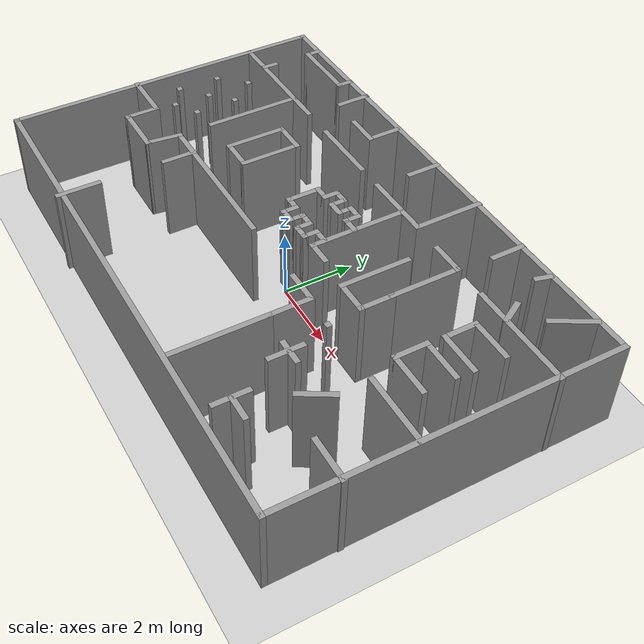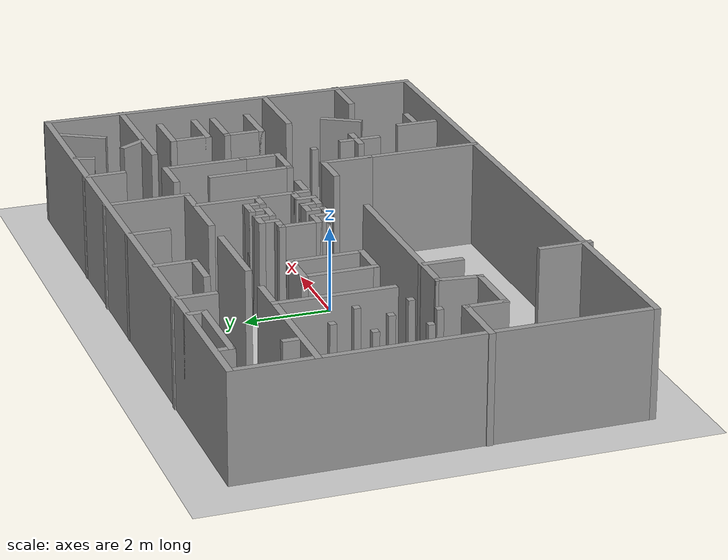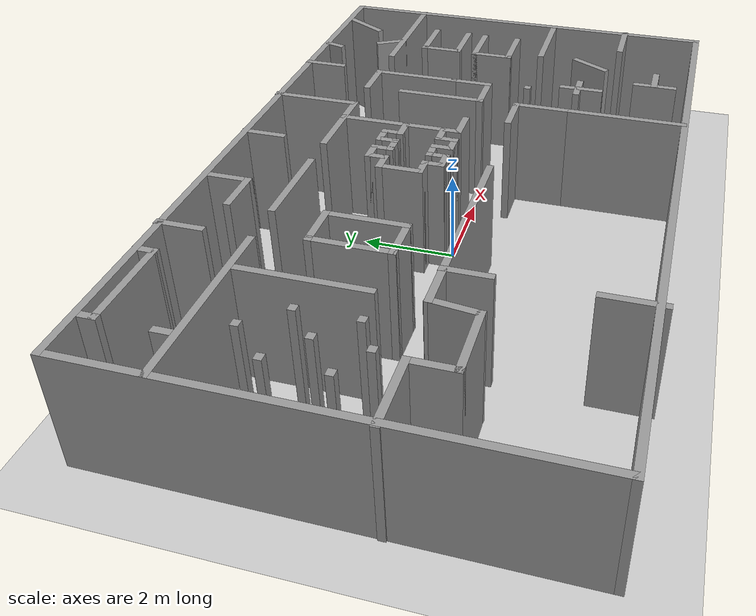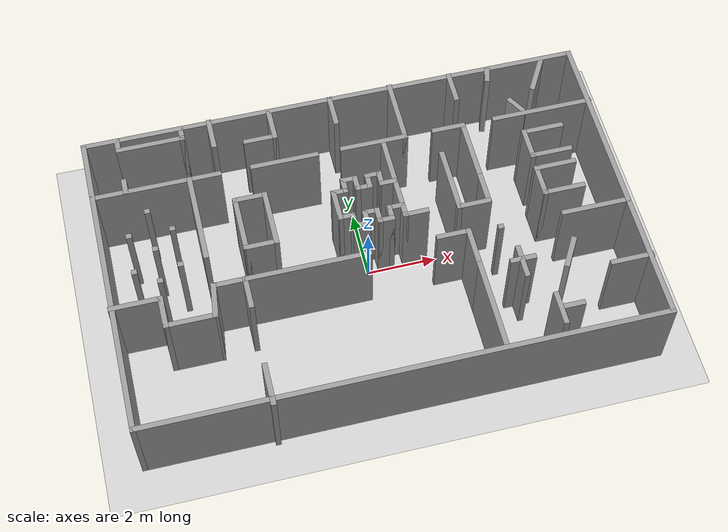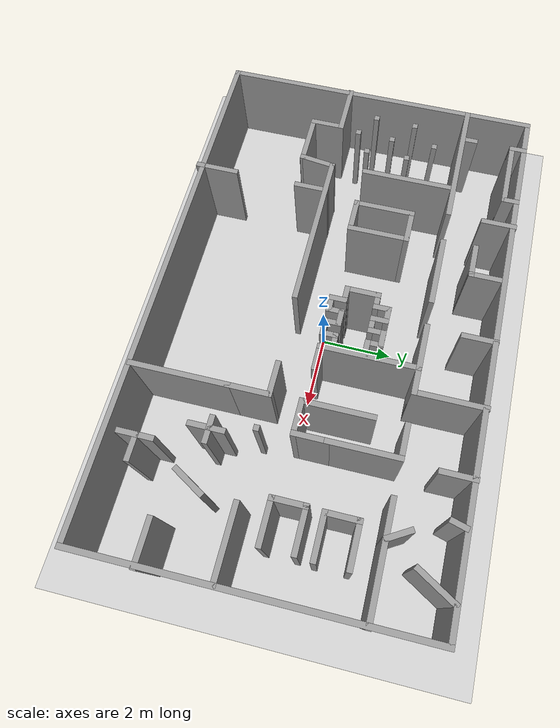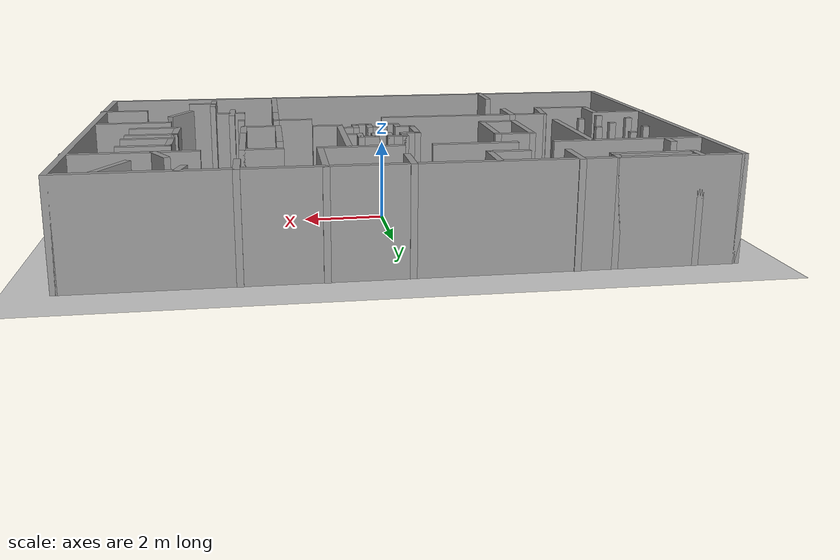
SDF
<?xml version="1.0" ?>
<sdf version="1.5">
  <world name="default">
    <include>
      <uri>model://sun</uri>
    </include>
    <include>
      <uri>model://ground_plane</uri>
    </include>
    <include>
      <uri>model://room2</uri>
      <static>true</static>
      <pose>0 0 0 0 0 0</pose>
    </include>
  </world>
</sdf>
